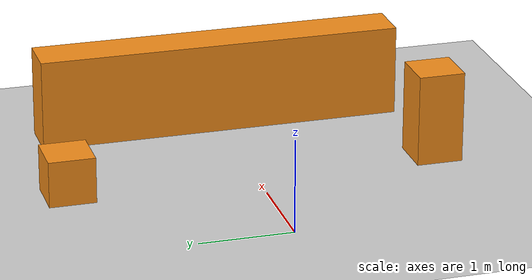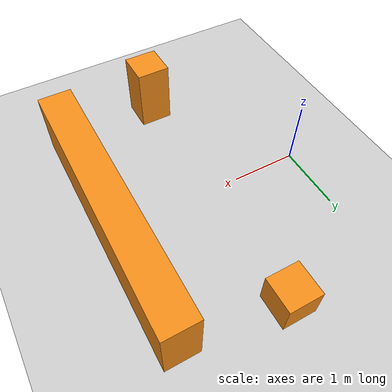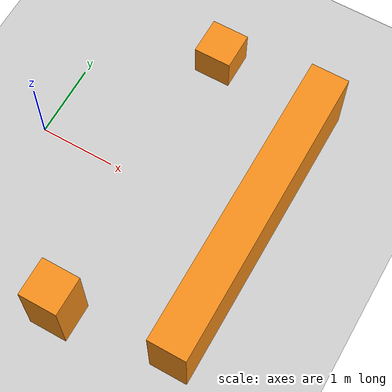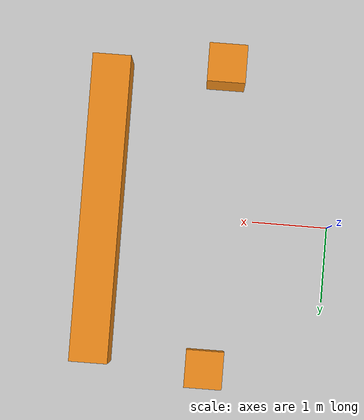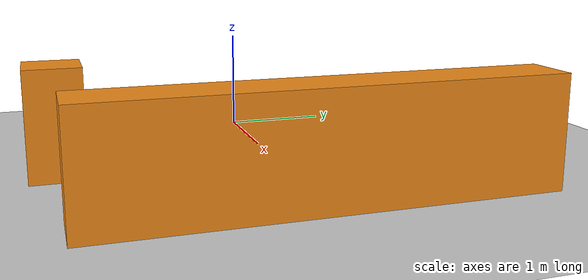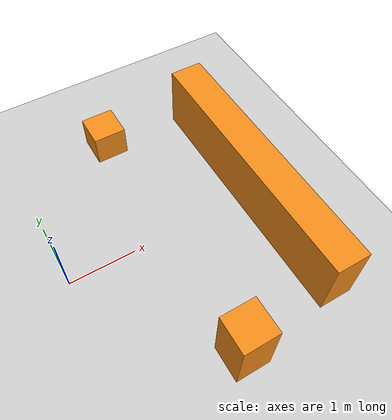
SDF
<?xml version="1.0" ?>
<sdf version="1.6">
  <world name="default">
    <include>
      <uri>model://sun</uri>
    </include>

    <include>
      <uri>model://ground_plane</uri>
    </include>

    <model name="wall_1">
      <pose>3.0 0.0 0.5 0 0 0</pose>
      <static>true</static>
      <link name="link">
        <collision name="collision">
          <geometry>
            <box>
              <size>0.5 4.0 1.0</size> </box>
          </geometry>
        </collision>
        <visual name="visual">
          <geometry>
            <box>
              <size>0.5 4.0 1.0</size>
            </box>
          </geometry>
          <material>
            <script>
              <uri>file://media/materials/scripts/gazebo.material</uri>
              <name>Gazebo/Orange</name>
            </script>
          </material>
        </visual>
      </link>
    </model>

    <model name="box_2">
      <pose>1.5 2.0 0.25 0 0 0</pose>
      <static>true</static>
      <link name="link">
        <collision name="collision">
          <geometry>
            <box>
              <size>0.5 0.5 0.5</size>
            </box>
          </geometry>
        </collision>
        <visual name="visual">
          <geometry>
            <box>
              <size>0.5 0.5 0.5</size>
            </box>
          </geometry>
          <material>
            <script>
              <uri>file://media/materials/scripts/gazebo.material</uri>
              <name>Gazebo/Orange</name>
            </script>
          </material>
        </visual>
      </link>
    </model>

    <model name="box_3">
      <pose>1.5 -2.0 0.5 0 0 0</pose>
      <static>true</static>
      <link name="link">
        <collision name="collision">
          <geometry>
            <box>
              <size>0.5 0.5 1.0</size>
            </box>
          </geometry>
        </collision>
        <visual name="visual">
          <geometry>
            <box>
              <size>0.5 0.5 1.0</size>
            </box>
          </geometry>
          <material>
            <script>
              <uri>file://media/materials/scripts/gazebo.material</uri>
              <name>Gazebo/Orange</name>
            </script>
          </material>
        </visual>
      </link>
    </model>

  </world>
</sdf>
